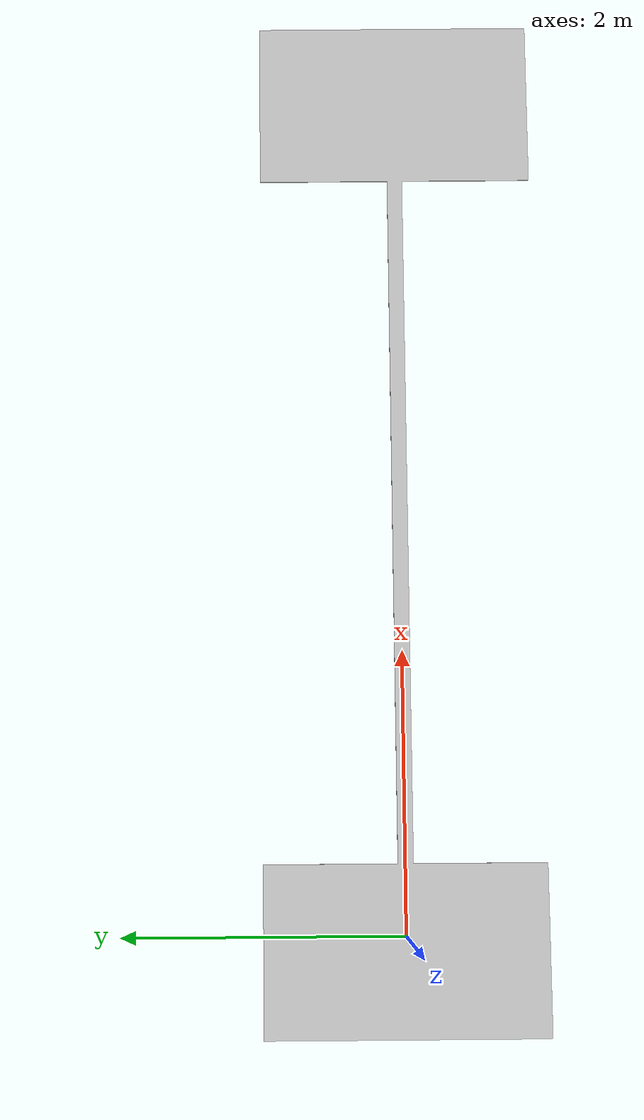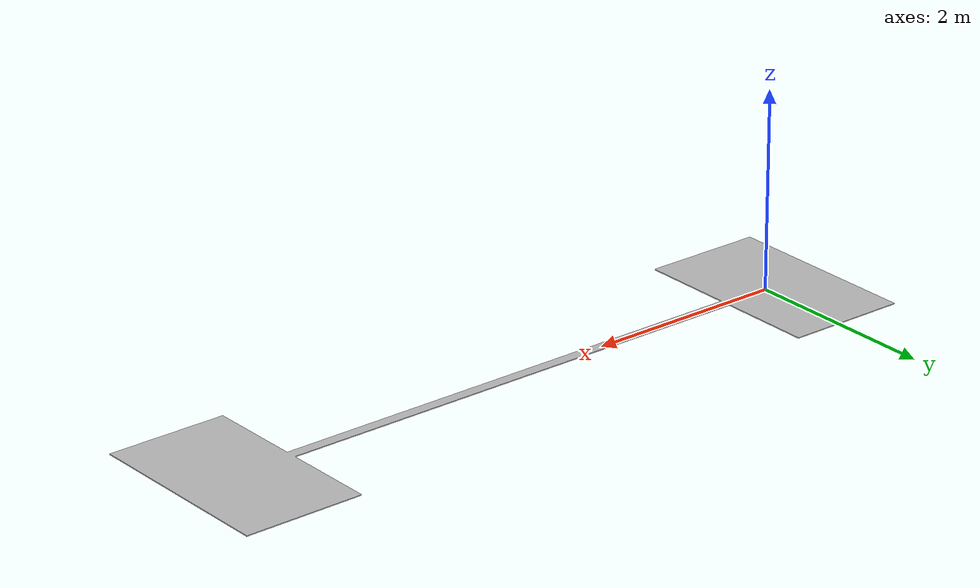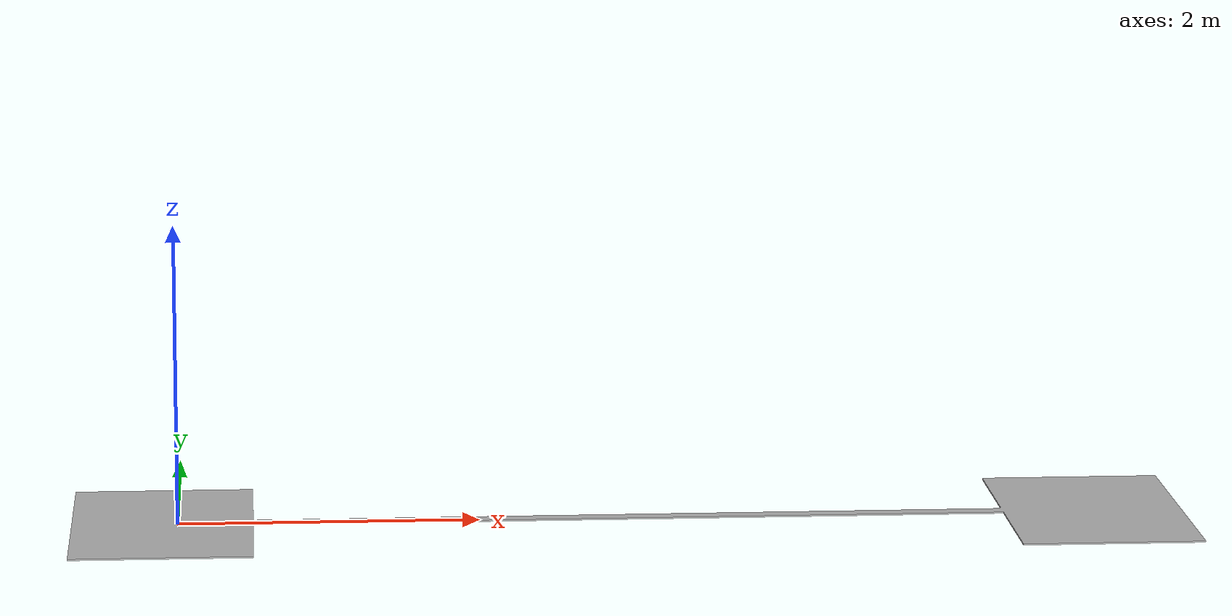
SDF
<?xml version="1.0"?>
<sdf version="1.6">
    <model name="b_beam">
      <static>true</static>
      <link name="body">
        <visual name="visual">
          <geometry>
            <mesh>
                <uri>meshes/b_beam.stl</uri>
            </mesh>
          </geometry>
        </visual>
        <collision name="collision">
          <geometry>
            <mesh>
                <uri>meshes/b_beam.stl</uri>
            </mesh>
          </geometry>
          <surface>
            <friction>
              <ode>
                <mu>100</mu>
                <mu2>100</mu2>
              </ode>
            </friction>
          </surface>
        </collision>
      </link>
    </model>
</sdf>
